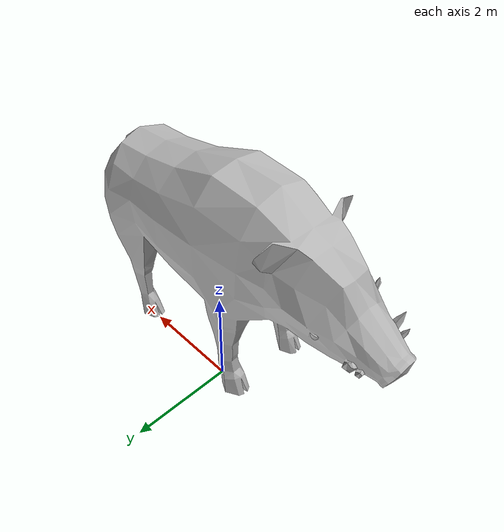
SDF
<?xml version="1.0"?>
	<sdf version="1.8">
    <model name="boar">
      <static>false</static>
      <link name="body">
        <collision name="col">
          <geometry><box><size>0.8 0.4 0.5</size></box></geometry>
        </collision>
        <visual name="vis">
          <geometry>
            <mesh>
              <uri>boar.obj</uri>
              <scale>0.5 0.5 0.5</scale>
            </mesh>
          </geometry>
          <temperature>311</temperature>
        </visual>
      </link>
    </model>
  </sdf>
